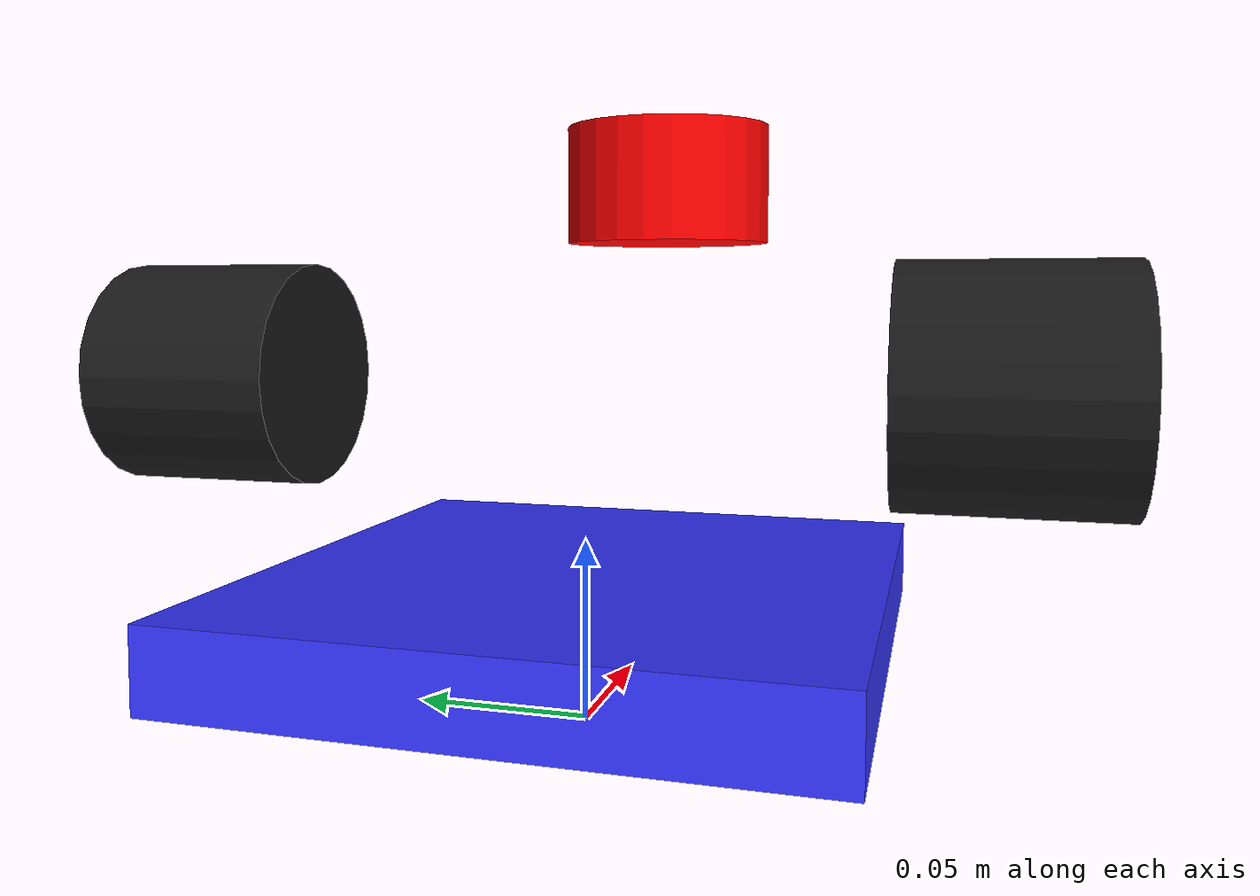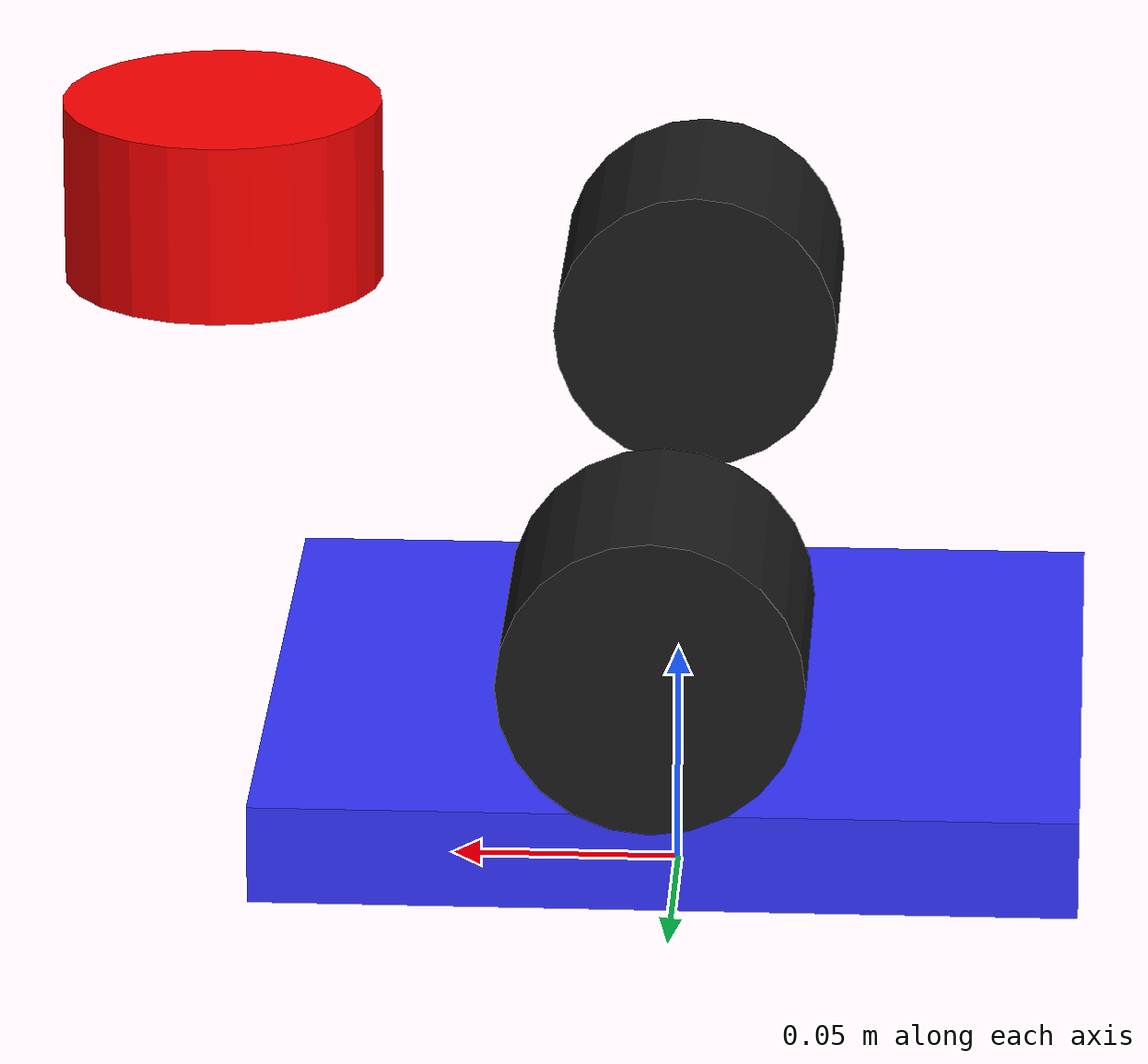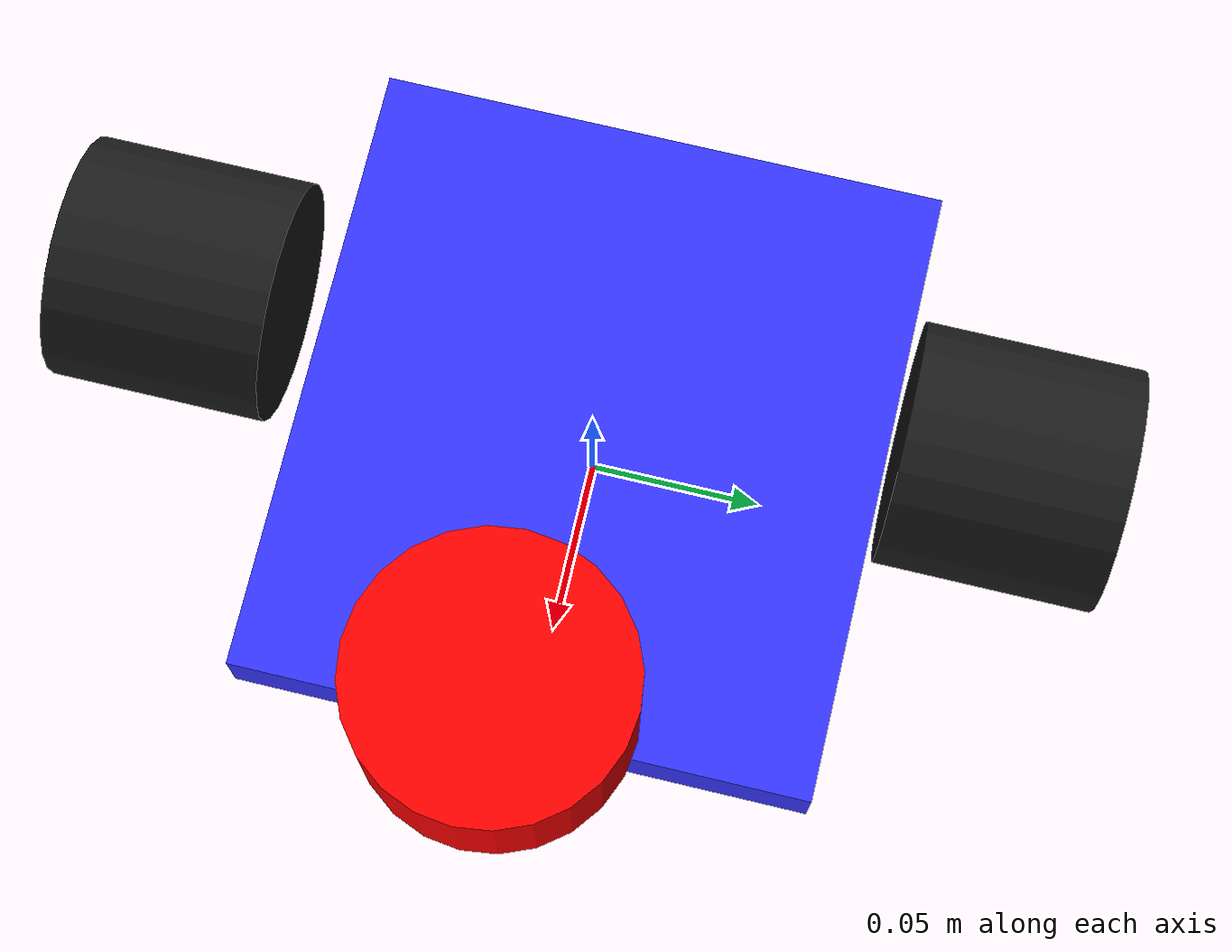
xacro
<?xml version="1.0"?>
<robot xmlns:xacro="http://www.ros.org/wiki/xacro" name="my_robot">

    <!-- Include separate component files -->
    <xacro:include filename="robot_core.xacro" />
    <xacro:include filename="lidar.xacro" />

    <!-- Gazebo plugin to publish joint states -->
    <gazebo>
        <plugin name="gazebo_ros_joint_state_publisher"
                filename="libgazebo_ros_joint_state_publisher.so">
            <update_rate>20</update_rate>
        </plugin>
    </gazebo>

</robot>

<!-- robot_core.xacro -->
<robot xmlns:xacro="http://www.ros.org/wiki/xacro">

    <!-- Define some properties (easy to change later) -->
    <xacro:property name="base_width" value="0.165"/>
    <xacro:property name="base_length" value="0.179"/>
    <xacro:property name="base_height" value="0.022"/>

    <xacro:property name="wheel_radius" value="0.032375"/>
    <xacro:property name="wheel_width" value="0.058"/>

    <!-- Materials for visualization -->
    <material name="white">
        <color rgba="1 1 1 1"/>
    </material>

    <material name="blue">
        <color rgba="0.2 0.2 1 0.9"/>
    </material>

    <material name="black">
        <color rgba="0.1 0.1 0.1 1"/>
    </material>

    <!-- Base footprint (on the ground) -->
    <link name="base_footprint"/>

    <!-- Base link (robot center, elevated above ground) -->
    <link name="base_link">
        <visual>
            <geometry>
                <box size="${base_length} ${base_width} ${base_height}"/>
            </geometry>
            <material name="blue"/>
        </visual>

        <inertial>
            <origin xyz="0 0 0" rpy="0 0 0"/>
            <mass value="5.0"/>
            <inertia ixx="0.1" ixy="0.0" ixz="0.0"
                     iyy="0.1" iyz="0.0" izz="0.1"/>
        </inertial>

        <collision>
            <geometry>
                <box size="${base_length} ${base_width} ${base_height}"/>
            </geometry>
        </collision>
    </link>

    <!-- Joint connecting footprint to base_link -->
    <joint name="base_joint" type="fixed">
        <parent link="base_footprint"/>
        <child link="base_link"/>
        <origin xyz="0 0 ${wheel_radius}" rpy="0 0 0"/>
    </joint>

    <!-- Placeholder wheels (won't move yet, but good for visualization) -->
    <link name="left_wheel">
        <visual>
            <geometry>
                <cylinder radius="${wheel_radius}" length="${wheel_width}"/>
            </geometry>
            <material name="black"/>
            <origin xyz="0 0 0.095" rpy="${pi/2} 0 0"/>
        </visual>

        <inertial>
            <origin xyz="0 0 0" rpy="0 0 0"/>
            <mass value="0.5"/>
            <inertia ixx="0.01" ixy="0.0" ixz="0.0"
                     iyy="0.01" iyz="0.0" izz="0.01"/>
        </inertial>

        <collision>
            <geometry>
                <cylinder radius="${wheel_radius}" length="${wheel_width}"/>
            </geometry>
            <origin xyz="0 0 0" rpy="${pi/2} 0 0"/>
        </collision>

    </link>

    <link name="right_wheel">
        <visual>
            <geometry>
                <cylinder radius="${wheel_radius}" length="${wheel_width}"/>
            </geometry>
            <material name="black"/>
            <origin xyz="0 0 0.095" rpy="${pi/2} 0 0"/>
        </visual>

        <inertial>
            <origin xyz="0 0 0" rpy="0 0 0"/>
            <mass value="0.5"/>
            <inertia ixx="0.01" ixy="0.0" ixz="0.0"
                     iyy="0.01" iyz="0.0" izz="0.01"/>
        </inertial>

        <collision>
            <geometry>
                <cylinder radius="${wheel_radius}" length="${wheel_width}"/>
            </geometry>
            <origin xyz="0 0 0" rpy="${pi/2} 0 0"/>
        </collision>

    </link>

    <joint name="left_wheel_joint" type="fixed">
        <parent link="base_link"/>
        <child link="left_wheel"/>
        <origin xyz="0 ${base_width/2 + wheel_width/2} -${wheel_radius}" rpy="0 0 0"/>
    </joint>

    <joint name="right_wheel_joint" type="fixed">
        <parent link="base_link"/>
        <child link="right_wheel"/>
        <origin xyz="0 -${base_width/2 + wheel_width/2} -${wheel_radius}" rpy="0 0 0"/>
    </joint>

    <!-- Gazebo-specific materials (RViz colors don't work in Gazebo) -->
    <gazebo reference="base_link">
        <material>Gazebo/Blue</material>
    </gazebo>

    <gazebo reference="left_wheel">
        <material>Gazebo/Black</material>
    </gazebo>

    <gazebo reference="right_wheel">
        <material>Gazebo/Black</material>
    </gazebo>

</robot>

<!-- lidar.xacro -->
<robot xmlns:xacro="http://www.ros.org/wiki/xacro">

    <!-- RPLIDAR mounting position (adjust based on your actual mounting) -->
    <xacro:property name="lidar_x_offset" value="0.1"/>   <!-- Forward from center -->
    <xacro:property name="lidar_y_offset" value="0.0"/>   <!-- Left/right from center -->
    <xacro:property name="lidar_z_offset" value=".124"/>  <!-- Up from base_link -->

    <!-- RPLIDAR link -->
    <link name="laser_frame">
        <visual>
            <geometry>
                <cylinder radius="0.035" length="0.04"/>
            </geometry>
            <material name="red">
                <color rgba="1 0 0 1"/>
            </material>
        </visual>

        <inertial>
            <origin xyz="0 0 0" rpy="0 0 0"/>
            <mass value="0.2"/>
            <inertia ixx="0.001" ixy="0.0" ixz="0.0"
                     iyy="0.001" iyz="0.0" izz="0.001"/>
        </inertial>

        <collision>
            <geometry>
                <cylinder radius="0.05" length="0.04"/>
            </geometry>
        </collision>

    </link>

    <!-- Joint connecting base_link to laser -->
    <joint name="laser_joint" type="fixed">
        <parent link="base_link"/>
        <child link="laser_frame"/>
        <origin xyz="${lidar_x_offset} ${lidar_y_offset} ${lidar_z_offset}" rpy="0 0 0"/>
    </joint>

    <gazebo reference="laser_frame">
        <material>Gazebo/Red</material>
    </gazebo>

</robot>
